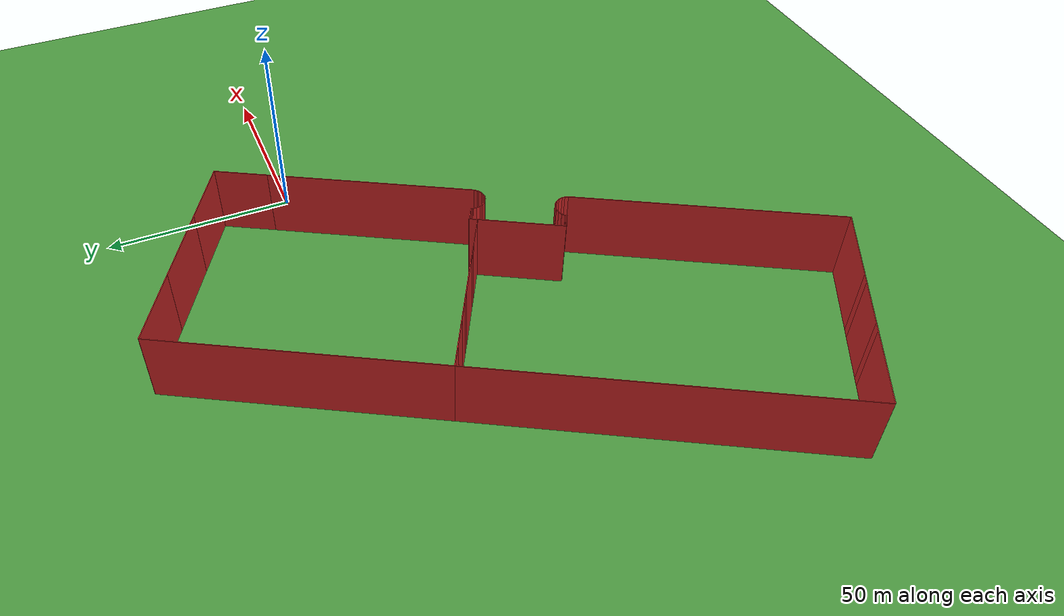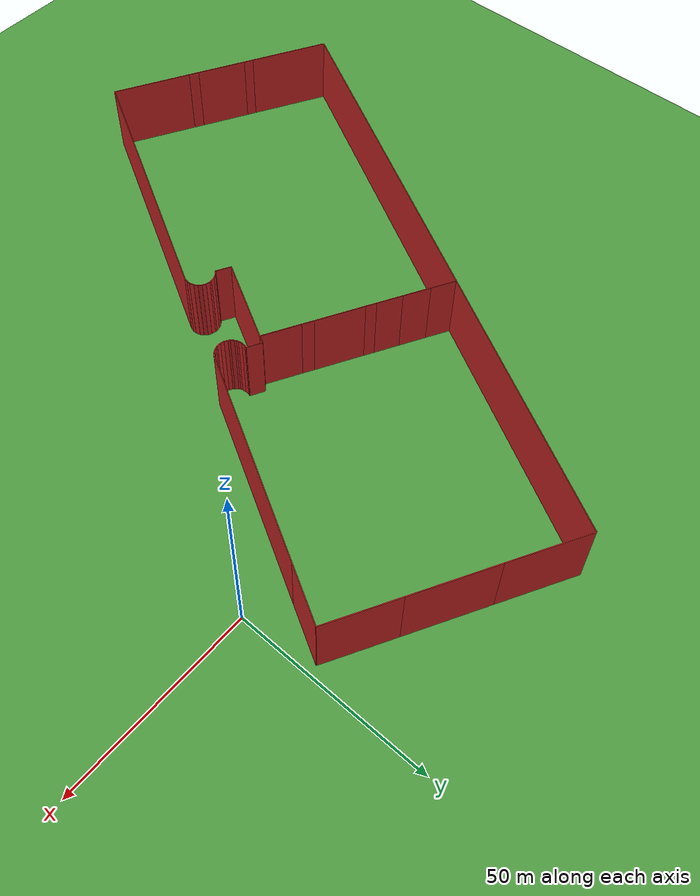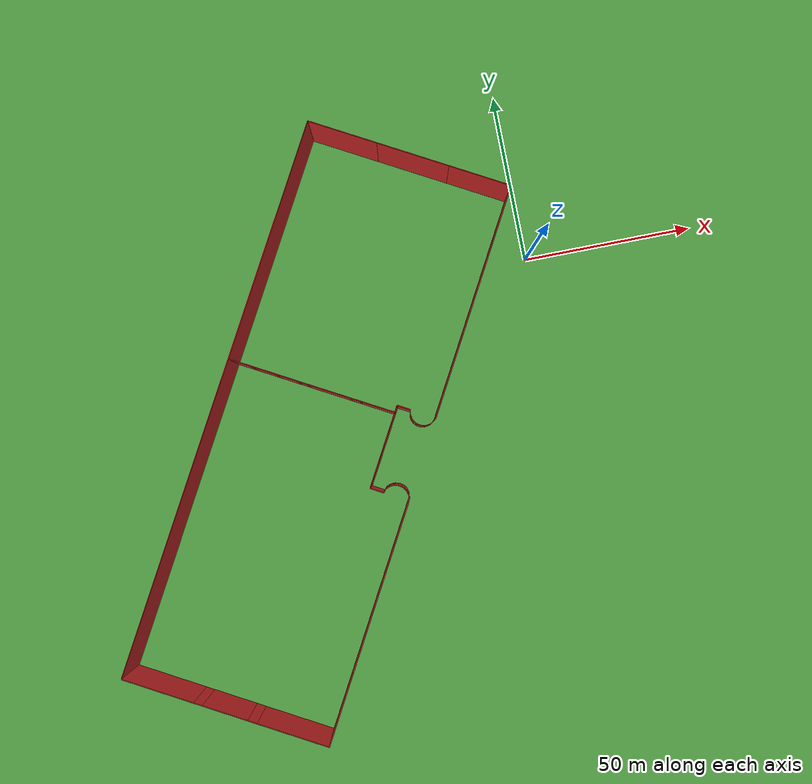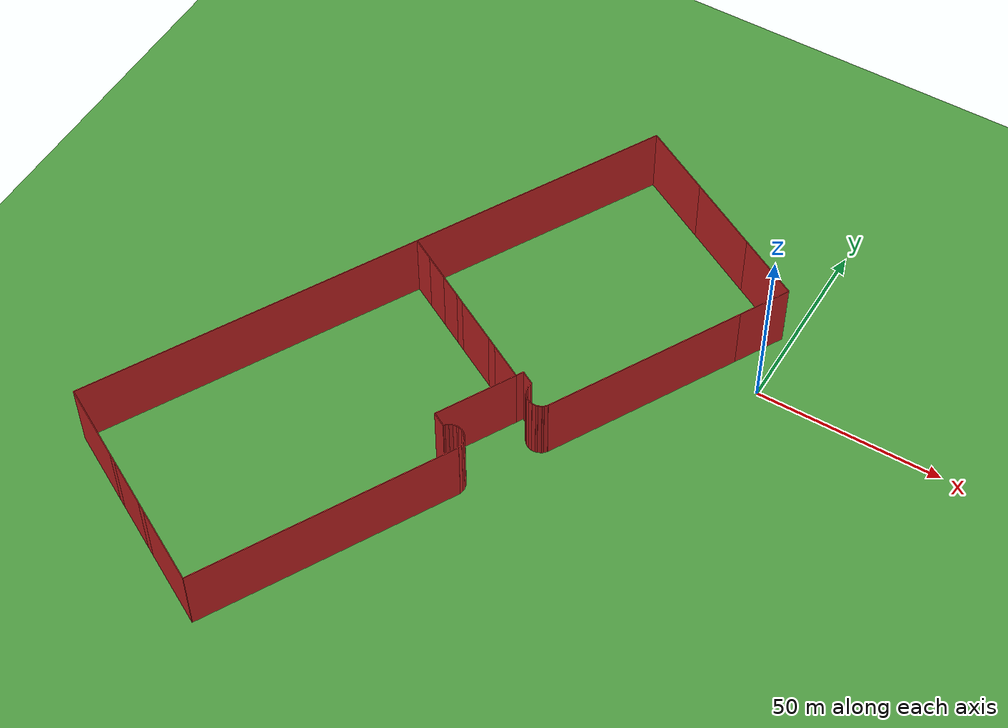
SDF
<sdf version="1.4">
 <world name="default">
  <model name="ground">
   <static>true</static>
   <link name="link">
    <collision name="collision">
     <geometry><plane><size>10000 10000</size><normal>0 0 1</normal></plane></geometry>
     <surface><friction><ode><mu>100</mu><mu2>50</mu2></ode></friction></surface>
    </collision>
    <visual name="visual">
     <pose>0 0 -1 0 0 0</pose>
     <geometry><plane><normal>0 0 1</normal><size>10000 10000</size></plane></geometry>
     <material>
      <script><uri>file://media/materials/scripts/gazebo.material</uri><name>Gazebo/Grass</name></script>
     </material>
    </visual>
   </link>
  </model>
  <include><uri>model://sun</uri></include>
  <model name="Simon and Schuster Building">
   <static>true</static>
   <pose>-47.6962353874 -24.9470054946 0.0 0 0 0</pose>
   <link name="Simon and Schuster Building_0">
    <collision name="Simon and Schuster Building_0">
     <geometry><box><size>71.4380936187 0.2 20.0</size></box></geometry>
    </collision>
    <visual name="Simon and Schuster Building_0">
     <geometry><box><size>71.4380936187 0.2 20.0</size></box></geometry>
     <material>
      <script><uri>file://media/materials/scripts/gazebo.material</uri><name>Gazebo/Red</name></script>
     </material>
    </visual>
    <pose>-25.5533376359 41.6574947093 9.0 0 0 -2.07699760132</pose>
   </link>
   <link name="Simon and Schuster Building_1">
    <collision name="Simon and Schuster Building_1">
     <geometry><box><size>20.6870997498 0.2 20.0</size></box></geometry>
    </collision>
    <visual name="Simon and Schuster Building_1">
     <geometry><box><size>20.6870997498 0.2 20.0</size></box></geometry>
     <material>
      <script><uri>file://media/materials/scripts/gazebo.material</uri><name>Gazebo/Red</name></script>
     </material>
    </visual>
    <pose>0.827700352413 67.9108597013 9.0 0 0 2.6385838798</pose>
   </link>
   <link name="Simon and Schuster Building_2">
    <collision name="Simon and Schuster Building_2">
     <geometry><box><size>21.5858556122 0.2 20.0</size></box></geometry>
    </collision>
    <visual name="Simon and Schuster Building_2">
     <geometry><box><size>21.5858556122 0.2 20.0</size></box></geometry>
     <material>
      <script><uri>file://media/materials/scripts/gazebo.material</uri><name>Gazebo/Red</name></script>
     </material>
    </visual>
    <pose>19.3471633394 57.7236041808 9.0 0 0 2.63878220523</pose>
   </link>
   <link name="Simon and Schuster Building_3">
    <collision name="Simon and Schuster Building_3">
     <geometry><box><size>18.5550408804 0.2 20.0</size></box></geometry>
    </collision>
    <visual name="Simon and Schuster Building_3">
     <geometry><box><size>18.5550408804 0.2 20.0</size></box></geometry>
     <material>
      <script><uri>file://media/materials/scripts/gazebo.material</uri><name>Gazebo/Red</name></script>
     </material>
    </visual>
    <pose>36.9326039464 48.0501783552 9.0 0 0 2.63857594239</pose>
   </link>
   <link name="Simon and Schuster Building_4">
    <collision name="Simon and Schuster Building_4">
     <geometry><box><size>14.4131865067 0.2 20.0</size></box></geometry>
    </collision>
    <visual name="Simon and Schuster Building_4">
     <geometry><box><size>14.4131865067 0.2 20.0</size></box></geometry>
     <material>
      <script><uri>file://media/materials/scripts/gazebo.material</uri><name>Gazebo/Red</name></script>
     </material>
    </visual>
    <pose>41.5694078952 37.2734571552 9.0 0 0 1.06501484287</pose>
   </link>
   <link name="Simon and Schuster Building_5">
    <collision name="Simon and Schuster Building_5">
     <geometry><box><size>54.9702549938 0.2 20.0</size></box></geometry>
    </collision>
    <visual name="Simon and Schuster Building_5">
     <geometry><box><size>54.9702549938 0.2 20.0</size></box></geometry>
     <material>
      <script><uri>file://media/materials/scripts/gazebo.material</uri><name>Gazebo/Red</name></script>
     </material>
    </visual>
    <pose>24.7512233169 6.93100967004 9.0 0 0 1.06458431968</pose>
   </link>
   <link name="Simon and Schuster Building_6">
    <collision name="Simon and Schuster Building_6">
     <geometry><box><size>0.999980190011 0.2 20.0</size></box></geometry>
    </collision>
    <visual name="Simon and Schuster Building_6">
     <geometry><box><size>0.999980190011 0.2 20.0</size></box></geometry>
     <material>
      <script><uri>file://media/materials/scripts/gazebo.material</uri><name>Gazebo/Red</name></script>
     </material>
    </visual>
    <pose>11.0798677542 -17.4693126733 9.0 0 0 0.810110981528</pose>
   </link>
   <link name="Simon and Schuster Building_7">
    <collision name="Simon and Schuster Building_7">
     <geometry><box><size>0.501273083533 0.2 20.0</size></box></geometry>
    </collision>
    <visual name="Simon and Schuster Building_7">
     <geometry><box><size>0.501273083533 0.2 20.0</size></box></geometry>
     <material>
      <script><uri>file://media/materials/scripts/gazebo.material</uri><name>Gazebo/Red</name></script>
     </material>
    </visual>
    <pose>10.529455777 -17.9746731024 9.0 0 0 0.608074829008</pose>
   </link>
   <link name="Simon and Schuster Building_8">
    <collision name="Simon and Schuster Building_8">
     <geometry><box><size>0.997408330679 0.2 20.0</size></box></geometry>
    </collision>
    <visual name="Simon and Schuster Building_8">
     <geometry><box><size>0.997408330679 0.2 20.0</size></box></geometry>
     <material>
      <script><uri>file://media/materials/scripts/gazebo.material</uri><name>Gazebo/Red</name></script>
     </material>
    </visual>
    <pose>9.8678479784 -18.3200044608 9.0 0 0 0.417352596468</pose>
   </link>
   <link name="Simon and Schuster Building_9">
    <collision name="Simon and Schuster Building_9">
     <geometry><box><size>0.512217014274 0.2 20.0</size></box></geometry>
    </collision>
    <visual name="Simon and Schuster Building_9">
     <geometry><box><size>0.512217014274 0.2 20.0</size></box></geometry>
     <material>
      <script><uri>file://media/materials/scripts/gazebo.material</uri><name>Gazebo/Red</name></script>
     </material>
    </visual>
    <pose>9.16176169993 -18.5768985831 9.0 0 0 0.215433376187</pose>
   </link>
   <link name="Simon and Schuster Building_10">
    <collision name="Simon and Schuster Building_10">
     <geometry><box><size>1.00107328043 0.2 20.0</size></box></geometry>
    </collision>
    <visual name="Simon and Schuster Building_10">
     <geometry><box><size>1.00107328043 0.2 20.0</size></box></geometry>
     <material>
      <script><uri>file://media/materials/scripts/gazebo.material</uri><name>Gazebo/Red</name></script>
     </material>
    </visual>
    <pose>8.41119634222 -18.6442839917 9.0 0 0 0.0252493590176</pose>
   </link>
   <link name="Simon and Schuster Building_11">
    <collision name="Simon and Schuster Building_11">
     <geometry><box><size>0.997755385082 0.2 20.0</size></box></geometry>
    </collision>
    <visual name="Simon and Schuster Building_11">
     <geometry><box><size>0.997755385082 0.2 20.0</size></box></geometry>
     <material>
      <script><uri>file://media/materials/scripts/gazebo.material</uri><name>Gazebo/Red</name></script>
     </material>
    </visual>
    <pose>7.42712059744 -18.5347956621 9.0 0 0 -0.247313322051</pose>
   </link>
   <link name="Simon and Schuster Building_12">
    <collision name="Simon and Schuster Building_12">
     <geometry><box><size>1.00107082446 0.2 20.0</size></box></geometry>
    </collision>
    <visual name="Simon and Schuster Building_12">
     <geometry><box><size>1.00107082446 0.2 20.0</size></box></geometry>
     <material>
      <script><uri>file://media/materials/scripts/gazebo.material</uri><name>Gazebo/Red</name></script>
     </material>
    </visual>
    <pose>6.50420058699 -18.1726281681 9.0 0 0 -0.500165781791</pose>
   </link>
   <link name="Simon and Schuster Building_13">
    <collision name="Simon and Schuster Building_13">
     <geometry><box><size>0.495348087162 0.2 20.0</size></box></geometry>
    </collision>
    <visual name="Simon and Schuster Building_13">
     <geometry><box><size>0.495348087162 0.2 20.0</size></box></geometry>
     <material>
      <script><uri>file://media/materials/scripts/gazebo.material</uri><name>Gazebo/Red</name></script>
     </material>
    </visual>
    <pose>5.87594692623 -17.772557076 9.0 0 0 -0.702498598296</pose>
   </link>
   <link name="Simon and Schuster Building_14">
    <collision name="Simon and Schuster Building_14">
     <geometry><box><size>1.00065503414 0.2 20.0</size></box></geometry>
    </collision>
    <visual name="Simon and Schuster Building_14">
     <geometry><box><size>1.00065503414 0.2 20.0</size></box></geometry>
     <material>
      <script><uri>file://media/materials/scripts/gazebo.material</uri><name>Gazebo/Red</name></script>
     </material>
    </visual>
    <pose>5.37556659732 -17.22087787 9.0 0 0 -0.89913356377</pose>
   </link>
   <link name="Simon and Schuster Building_15">
    <collision name="Simon and Schuster Building_15">
     <geometry><box><size>0.503784599763 0.2 20.0</size></box></geometry>
    </collision>
    <visual name="Simon and Schuster Building_15">
     <geometry><box><size>0.503784599763 0.2 20.0</size></box></geometry>
     <material>
      <script><uri>file://media/materials/scripts/gazebo.material</uri><name>Gazebo/Red</name></script>
     </material>
    </visual>
    <pose>4.94746264033 -16.6060285 9.0 0 0 -1.08883804761</pose>
   </link>
   <link name="Simon and Schuster Building_16">
    <collision name="Simon and Schuster Building_16">
     <geometry><box><size>0.500289534836 0.2 20.0</size></box></geometry>
    </collision>
    <visual name="Simon and Schuster Building_16">
     <geometry><box><size>0.500289534836 0.2 20.0</size></box></geometry>
     <material>
      <script><uri>file://media/materials/scripts/gazebo.material</uri><name>Gazebo/Red</name></script>
     </material>
    </visual>
    <pose>4.74730920657 -16.146996401 9.0 0 0 -1.23089192742</pose>
   </link>
   <link name="Simon and Schuster Building_17">
    <collision name="Simon and Schuster Building_17">
     <geometry><box><size>0.995993198311 0.2 20.0</size></box></geometry>
    </collision>
    <visual name="Simon and Schuster Building_17">
     <geometry><box><size>0.995993198311 0.2 20.0</size></box></geometry>
     <material>
      <script><uri>file://media/materials/scripts/gazebo.material</uri><name>Gazebo/Red</name></script>
     </material>
    </visual>
    <pose>4.59163230755 -15.418439928 9.0 0 0 -1.42514151866</pose>
   </link>
   <link name="Simon and Schuster Building_18">
    <collision name="Simon and Schuster Building_18">
     <geometry><box><size>0.991701103251 0.2 20.0</size></box></geometry>
    </collision>
    <visual name="Simon and Schuster Building_18">
     <geometry><box><size>0.991701103251 0.2 20.0</size></box></geometry>
     <material>
      <script><uri>file://media/materials/scripts/gazebo.material</uri><name>Gazebo/Red</name></script>
     </material>
    </visual>
    <pose>4.57494775226 -14.4329925316 9.0 0 0 -1.68315272438</pose>
   </link>
   <link name="Simon and Schuster Building_19">
    <collision name="Simon and Schuster Building_19">
     <geometry><box><size>0.504698190787 0.2 20.0</size></box></geometry>
    </collision>
    <visual name="Simon and Schuster Building_19">
     <geometry><box><size>0.504698190787 0.2 20.0</size></box></geometry>
     <material>
      <script><uri>file://media/materials/scripts/gazebo.material</uri><name>Gazebo/Red</name></script>
     </material>
    </visual>
    <pose>4.70837778395 -13.7002231823 9.0 0 0 -1.88435162467</pose>
   </link>
   <link name="Simon and Schuster Building_20">
    <collision name="Simon and Schuster Building_20">
     <geometry><box><size>3.96123953345 0.2 20.0</size></box></geometry>
    </collision>
    <visual name="Simon and Schuster Building_20">
     <geometry><box><size>3.96123953345 0.2 20.0</size></box></geometry>
     <material>
      <script><uri>file://media/materials/scripts/gazebo.material</uri><name>Gazebo/Red</name></script>
     </material>
    </visual>
    <pose>3.05156727858 -12.5042181712 9.0 0 0 -0.503685783553</pose>
   </link>
   <link name="Simon and Schuster Building_21">
    <collision name="Simon and Schuster Building_21">
     <geometry><box><size>2.0488746776 0.2 20.0</size></box></geometry>
    </collision>
    <visual name="Simon and Schuster Building_21">
     <geometry><box><size>2.0488746776 0.2 20.0</size></box></geometry>
     <material>
      <script><uri>file://media/materials/scripts/gazebo.material</uri><name>Gazebo/Red</name></script>
     </material>
    </visual>
    <pose>0.822108693752 -12.4452713242 9.0 0 0 1.06670793752</pose>
   </link>
   <link name="Simon and Schuster Building_22">
    <collision name="Simon and Schuster Building_22">
     <geometry><box><size>10.1819965175 0.2 20.0</size></box></geometry>
    </collision>
    <visual name="Simon and Schuster Building_22">
     <geometry><box><size>10.1819965175 0.2 20.0</size></box></geometry>
     <material>
      <script><uri>file://media/materials/scripts/gazebo.material</uri><name>Gazebo/Red</name></script>
     </material>
    </visual>
    <pose>-4.13719236136 -10.8955294638 9.0 0 0 -0.501343475595</pose>
   </link>
   <link name="Simon and Schuster Building_23">
    <collision name="Simon and Schuster Building_23">
     <geometry><box><size>3.10390647777 0.2 20.0</size></box></geometry>
    </collision>
    <visual name="Simon and Schuster Building_23">
     <geometry><box><size>3.10390647777 0.2 20.0</size></box></geometry>
     <material>
      <script><uri>file://media/materials/scripts/gazebo.material</uri><name>Gazebo/Red</name></script>
     </material>
    </visual>
    <pose>-9.95826196489 -7.69495403095 9.0 0 0 -0.507191082803</pose>
   </link>
   <link name="Simon and Schuster Building_24">
    <collision name="Simon and Schuster Building_24">
     <geometry><box><size>12.8547741945 0.2 20.0</size></box></geometry>
    </collision>
    <visual name="Simon and Schuster Building_24">
     <geometry><box><size>12.8547741945 0.2 20.0</size></box></geometry>
     <material>
      <script><uri>file://media/materials/scripts/gazebo.material</uri><name>Gazebo/Red</name></script>
     </material>
    </visual>
    <pose>-16.9524382079 -3.85425306886 9.0 0 0 -0.500962342889</pose>
   </link>
   <link name="Simon and Schuster Building_25">
    <collision name="Simon and Schuster Building_25">
     <geometry><box><size>2.75404942721 0.2 20.0</size></box></geometry>
    </collision>
    <visual name="Simon and Schuster Building_25">
     <geometry><box><size>2.75404942721 0.2 20.0</size></box></geometry>
     <material>
      <script><uri>file://media/materials/scripts/gazebo.material</uri><name>Gazebo/Red</name></script>
     </material>
    </visual>
    <pose>-23.7909405075 -0.0935640487482 9.0 0 0 -0.511312389174</pose>
   </link>
   <link name="Simon and Schuster Building_26">
    <collision name="Simon and Schuster Building_26">
     <geometry><box><size>6.64780825718 0.2 20.0</size></box></geometry>
    </collision>
    <visual name="Simon and Schuster Building_26">
     <geometry><box><size>6.64780825718 0.2 20.0</size></box></geometry>
     <material>
      <script><uri>file://media/materials/scripts/gazebo.material</uri><name>Gazebo/Red</name></script>
     </material>
    </visual>
    <pose>-27.905160005 2.18054213489 9.0 0 0 -0.502309612859</pose>
   </link>
   <link name="Simon and Schuster Building_27">
    <collision name="Simon and Schuster Building_27">
     <geometry><box><size>7.15930381738 0.2 20.0</size></box></geometry>
    </collision>
    <visual name="Simon and Schuster Building_27">
     <geometry><box><size>7.15930381738 0.2 20.0</size></box></geometry>
     <material>
      <script><uri>file://media/materials/scripts/gazebo.material</uri><name>Gazebo/Red</name></script>
     </material>
    </visual>
    <pose>-33.9541734842 5.50747907603 9.0 0 0 -0.503333674969</pose>
   </link>
   <link name="Simon and Schuster Building_28">
    <collision name="Simon and Schuster Building_28">
     <geometry><box><size>6.60072019499 0.2 20.0</size></box></geometry>
    </collision>
    <visual name="Simon and Schuster Building_28">
     <geometry><box><size>6.60072019499 0.2 20.0</size></box></geometry>
     <material>
      <script><uri>file://media/materials/scripts/gazebo.material</uri><name>Gazebo/Red</name></script>
     </material>
    </visual>
    <pose>-39.9809465211 8.82599862009 9.0 0 0 -0.503318613671</pose>
   </link>
  </model>
  <model name="office_building_266170794">
   <static>true</static>
   <pose>-68.3519740616 -61.2051730251 0.0 0 0 0</pose>
   <link name="office_building_266170794_0">
    <collision name="office_building_266170794_0">
     <geometry><box><size>0.985597973243 0.2 20.0</size></box></geometry>
    </collision>
    <visual name="office_building_266170794_0">
     <geometry><box><size>0.985597973243 0.2 20.0</size></box></geometry>
     <material>
      <script><uri>file://media/materials/scripts/gazebo.material</uri><name>Gazebo/Red</name></script>
     </material>
    </visual>
    <pose>20.2937956316 -1.83824096528 9.0 0 0 1.34320542155</pose>
   </link>
   <link name="office_building_266170794_1">
    <collision name="office_building_266170794_1">
     <geometry><box><size>71.4105456865 0.2 20.0</size></box></geometry>
    </collision>
    <visual name="office_building_266170794_1">
     <geometry><box><size>71.4105456865 0.2 20.0</size></box></geometry>
     <material>
      <script><uri>file://media/materials/scripts/gazebo.material</uri><name>Gazebo/Red</name></script>
     </material>
    </visual>
    <pose>2.86995501075 -33.5455423876 9.0 0 0 1.06457430884</pose>
   </link>
   <link name="office_building_266170794_2">
    <collision name="office_building_266170794_2">
     <geometry><box><size>21.111753551 0.2 20.0</size></box></geometry>
    </collision>
    <visual name="office_building_266170794_2">
     <geometry><box><size>21.111753551 0.2 20.0</size></box></geometry>
     <material>
      <script><uri>file://media/materials/scripts/gazebo.material</uri><name>Gazebo/Red</name></script>
     </material>
    </visual>
    <pose>-23.6941958117 -59.6898142996 9.0 0 0 -0.502396039008</pose>
   </link>
   <link name="office_building_266170794_3">
    <collision name="office_building_266170794_3">
     <geometry><box><size>2.76938536291 0.2 20.0</size></box></geometry>
    </collision>
    <visual name="office_building_266170794_3">
     <geometry><box><size>2.76938536291 0.2 20.0</size></box></geometry>
     <material>
      <script><uri>file://media/materials/scripts/gazebo.material</uri><name>Gazebo/Red</name></script>
     </material>
    </visual>
    <pose>-34.1577319762 -53.937290424 9.0 0 0 -0.504720133773</pose>
   </link>
   <link name="office_building_266170794_4">
    <collision name="office_building_266170794_4">
     <geometry><box><size>13.2623406227 0.2 20.0</size></box></geometry>
    </collision>
    <visual name="office_building_266170794_4">
     <geometry><box><size>13.2623406227 0.2 20.0</size></box></geometry>
     <material>
      <script><uri>file://media/materials/scripts/gazebo.material</uri><name>Gazebo/Red</name></script>
     </material>
    </visual>
    <pose>-41.1797501444 -50.0713763378 9.0 0 0 -0.502953937623</pose>
   </link>
   <link name="office_building_266170794_5">
    <collision name="office_building_266170794_5">
     <geometry><box><size>2.50958147967 0.2 20.0</size></box></geometry>
    </collision>
    <visual name="office_building_266170794_5">
     <geometry><box><size>2.50958147967 0.2 20.0</size></box></geometry>
     <material>
      <script><uri>file://media/materials/scripts/gazebo.material</uri><name>Gazebo/Red</name></script>
     </material>
    </visual>
    <pose>-48.0905717109 -46.2728398111 9.0 0 0 -0.50057143386</pose>
   </link>
   <link name="office_building_266170794_6">
    <collision name="office_building_266170794_6">
     <geometry><box><size>21.1751058466 0.2 20.0</size></box></geometry>
    </collision>
    <visual name="office_building_266170794_6">
     <geometry><box><size>21.1751058466 0.2 20.0</size></box></geometry>
     <material>
      <script><uri>file://media/materials/scripts/gazebo.material</uri><name>Gazebo/Red</name></script>
     </material>
    </visual>
    <pose>-58.4651374539 -40.5623777782 9.0 0 0 -0.503480802042</pose>
   </link>
   <link name="office_building_266170794_7">
    <collision name="office_building_266170794_7">
     <geometry><box><size>93.9024523558 0.2 20.0</size></box></geometry>
    </collision>
    <visual name="office_building_266170794_7">
     <geometry><box><size>93.9024523558 0.2 20.0</size></box></geometry>
     <material>
      <script><uri>file://media/materials/scripts/gazebo.material</uri><name>Gazebo/Red</name></script>
     </material>
    </visual>
    <pose>-44.9775720392 5.61096126976 9.0 0 0 -2.07691469404</pose>
   </link>
   <link name="office_building_266170794_8">
    <collision name="office_building_266170794_8">
     <geometry><box><size>6.60072019499 0.2 20.0</size></box></geometry>
    </collision>
    <visual name="office_building_266170794_8">
     <geometry><box><size>6.60072019499 0.2 20.0</size></box></geometry>
     <material>
      <script><uri>file://media/materials/scripts/gazebo.material</uri><name>Gazebo/Red</name></script>
     </material>
    </visual>
    <pose>-19.3252078469 45.0841661506 9.0 0 0 2.63827403992</pose>
   </link>
   <link name="office_building_266170794_9">
    <collision name="office_building_266170794_9">
     <geometry><box><size>7.15930381738 0.2 20.0</size></box></geometry>
    </collision>
    <visual name="office_building_266170794_9">
     <geometry><box><size>7.15930381738 0.2 20.0</size></box></geometry>
     <material>
      <script><uri>file://media/materials/scripts/gazebo.material</uri><name>Gazebo/Red</name></script>
     </material>
    </visual>
    <pose>-13.29843481 41.7656466065 9.0 0 0 2.63825897862</pose>
   </link>
   <link name="office_building_266170794_10">
    <collision name="office_building_266170794_10">
     <geometry><box><size>6.64780825718 0.2 20.0</size></box></geometry>
    </collision>
    <visual name="office_building_266170794_10">
     <geometry><box><size>6.64780825718 0.2 20.0</size></box></geometry>
     <material>
      <script><uri>file://media/materials/scripts/gazebo.material</uri><name>Gazebo/Red</name></script>
     </material>
    </visual>
    <pose>-7.24942133079 38.4387096654 9.0 0 0 2.63928304073</pose>
   </link>
   <link name="office_building_266170794_11">
    <collision name="office_building_266170794_11">
     <geometry><box><size>2.75404942721 0.2 20.0</size></box></geometry>
    </collision>
    <visual name="office_building_266170794_11">
     <geometry><box><size>2.75404942721 0.2 20.0</size></box></geometry>
     <material>
      <script><uri>file://media/materials/scripts/gazebo.material</uri><name>Gazebo/Red</name></script>
     </material>
    </visual>
    <pose>-3.13520183328 36.1646034818 9.0 0 0 2.63028026442</pose>
   </link>
   <link name="office_building_266170794_12">
    <collision name="office_building_266170794_12">
     <geometry><box><size>12.8547741945 0.2 20.0</size></box></geometry>
    </collision>
    <visual name="office_building_266170794_12">
     <geometry><box><size>12.8547741945 0.2 20.0</size></box></geometry>
     <material>
      <script><uri>file://media/materials/scripts/gazebo.material</uri><name>Gazebo/Red</name></script>
     </material>
    </visual>
    <pose>3.70330046628 32.4039144617 9.0 0 0 2.6406303107</pose>
   </link>
   <link name="office_building_266170794_13">
    <collision name="office_building_266170794_13">
     <geometry><box><size>3.10390647777 0.2 20.0</size></box></geometry>
    </collision>
    <visual name="office_building_266170794_13">
     <geometry><box><size>3.10390647777 0.2 20.0</size></box></geometry>
     <material>
      <script><uri>file://media/materials/scripts/gazebo.material</uri><name>Gazebo/Red</name></script>
     </material>
    </visual>
    <pose>10.6974767093 28.5632134996 9.0 0 0 2.63440157079</pose>
   </link>
   <link name="office_building_266170794_14">
    <collision name="office_building_266170794_14">
     <geometry><box><size>10.1819965175 0.2 20.0</size></box></geometry>
    </collision>
    <visual name="office_building_266170794_14">
     <geometry><box><size>10.1819965175 0.2 20.0</size></box></geometry>
     <material>
      <script><uri>file://media/materials/scripts/gazebo.material</uri><name>Gazebo/Red</name></script>
     </material>
    </visual>
    <pose>16.5185463128 25.3626380668 9.0 0 0 2.640249178</pose>
   </link>
   <link name="office_building_266170794_15">
    <collision name="office_building_266170794_15">
     <geometry><box><size>22.4290645627 0.2 20.0</size></box></geometry>
    </collision>
    <visual name="office_building_266170794_15">
     <geometry><box><size>22.4290645627 0.2 20.0</size></box></geometry>
     <material>
      <script><uri>file://media/materials/scripts/gazebo.material</uri><name>Gazebo/Red</name></script>
     </material>
    </visual>
    <pose>15.5456663916 13.1076846066 9.0 0 0 1.06460445925</pose>
   </link>
   <link name="office_building_266170794_16">
    <collision name="office_building_266170794_16">
     <geometry><box><size>4.08708380535 0.2 20.0</size></box></geometry>
    </collision>
    <visual name="office_building_266170794_16">
     <geometry><box><size>4.08708380535 0.2 20.0</size></box></geometry>
     <material>
      <script><uri>file://media/materials/scripts/gazebo.material</uri><name>Gazebo/Red</name></script>
     </material>
    </visual>
    <pose>11.8985444712 2.31405085622 9.0 0 0 2.63840658875</pose>
   </link>
   <link name="office_building_266170794_17">
    <collision name="office_building_266170794_17">
     <geometry><box><size>0.411089030786 0.2 20.0</size></box></geometry>
    </collision>
    <visual name="office_building_266170794_17">
     <geometry><box><size>0.411089030786 0.2 20.0</size></box></geometry>
     <material>
      <script><uri>file://media/materials/scripts/gazebo.material</uri><name>Gazebo/Red</name></script>
     </material>
    </visual>
    <pose>13.7777450862 1.51391467159 9.0 0 0 -2.01836458682</pose>
   </link>
   <link name="office_building_266170794_18">
    <collision name="office_building_266170794_18">
     <geometry><box><size>0.991914916586 0.2 20.0</size></box></geometry>
    </collision>
    <visual name="office_building_266170794_18">
     <geometry><box><size>0.991914916586 0.2 20.0</size></box></geometry>
     <material>
      <script><uri>file://media/materials/scripts/gazebo.material</uri><name>Gazebo/Red</name></script>
     </material>
    </visual>
    <pose>14.2558793125 2.00664299768 9.0 0 0 -2.47301472578</pose>
   </link>
   <link name="office_building_266170794_19">
    <collision name="office_building_266170794_19">
     <geometry><box><size>0.990700347666 0.2 20.0</size></box></geometry>
    </collision>
    <visual name="office_building_266170794_19">
     <geometry><box><size>0.990700347666 0.2 20.0</size></box></geometry>
     <material>
      <script><uri>file://media/materials/scripts/gazebo.material</uri><name>Gazebo/Red</name></script>
     </material>
    </visual>
    <pose>15.1009567546 2.50779683321 9.0 0 0 -2.73978177848</pose>
   </link>
   <link name="office_building_266170794_20">
    <collision name="office_building_266170794_20">
     <geometry><box><size>0.999939515745 0.2 20.0</size></box></geometry>
    </collision>
    <visual name="office_building_266170794_20">
     <geometry><box><size>0.999939515745 0.2 20.0</size></box></geometry>
     <material>
      <script><uri>file://media/materials/scripts/gazebo.material</uri><name>Gazebo/Red</name></script>
     </material>
    </visual>
    <pose>16.0516712731 2.77311750777 9.0 0 0 -2.99789731028</pose>
   </link>
   <link name="office_building_266170794_21">
    <collision name="office_building_266170794_21">
     <geometry><box><size>0.489909728263 0.2 20.0</size></box></geometry>
    </collision>
    <visual name="office_building_266170794_21">
     <geometry><box><size>0.489909728263 0.2 20.0</size></box></geometry>
     <material>
      <script><uri>file://media/materials/scripts/gazebo.material</uri><name>Gazebo/Red</name></script>
     </material>
    </visual>
    <pose>16.7911170692 2.83208182218 9.0 0 0 3.09000098081</pose>
   </link>
   <link name="office_building_266170794_22">
    <collision name="office_building_266170794_22">
     <geometry><box><size>0.997755469147 0.2 20.0</size></box></geometry>
    </collision>
    <visual name="office_building_266170794_22">
     <geometry><box><size>0.997755469147 0.2 20.0</size></box></geometry>
     <material>
      <script><uri>file://media/materials/scripts/gazebo.material</uri><name>Gazebo/Red</name></script>
     </material>
    </visual>
    <pose>17.5194449047 2.6973253898 9.0 0 0 2.89428102627</pose>
   </link>
   <link name="office_building_266170794_23">
    <collision name="office_building_266170794_23">
     <geometry><box><size>0.987276587212 0.2 20.0</size></box></geometry>
    </collision>
    <visual name="office_building_266170794_23">
     <geometry><box><size>0.987276587212 0.2 20.0</size></box></geometry>
     <material>
      <script><uri>file://media/materials/scripts/gazebo.material</uri><name>Gazebo/Red</name></script>
     </material>
    </visual>
    <pose>18.4368058942 2.33937063126 9.0 0 0 2.64351324668</pose>
   </link>
   <link name="office_building_266170794_24">
    <collision name="office_building_266170794_24">
     <geometry><box><size>0.985842112598 0.2 20.0</size></box></geometry>
    </collision>
    <visual name="office_building_266170794_24">
     <geometry><box><size>0.985842112598 0.2 20.0</size></box></geometry>
     <material>
      <script><uri>file://media/materials/scripts/gazebo.material</uri><name>Gazebo/Red</name></script>
     </material>
    </visual>
    <pose>19.2262944951 1.76242642268 9.0 0 0 2.37730170104</pose>
   </link>
   <link name="office_building_266170794_25">
    <collision name="office_building_266170794_25">
     <geometry><box><size>0.992620580768 0.2 20.0</size></box></geometry>
    </collision>
    <visual name="office_building_266170794_25">
     <geometry><box><size>0.992620580768 0.2 20.0</size></box></geometry>
     <material>
      <script><uri>file://media/materials/scripts/gazebo.material</uri><name>Gazebo/Red</name></script>
     </material>
    </visual>
    <pose>19.8378727996 0.995971616316 9.0 0 0 2.11216128862</pose>
   </link>
   <link name="office_building_266170794_26">
    <collision name="office_building_266170794_26">
     <geometry><box><size>1.18416896978 0.2 20.0</size></box></geometry>
    </collision>
    <visual name="office_building_266170794_26">
     <geometry><box><size>1.18416896978 0.2 20.0</size></box></geometry>
     <material>
      <script><uri>file://media/materials/scripts/gazebo.material</uri><name>Gazebo/Red</name></script>
     </material>
    </visual>
    <pose>20.2437424887 -0.00210719243478 9.0 0 0 1.82713579869</pose>
   </link>
   <link name="office_building_266170794_27">
    <collision name="office_building_266170794_27">
     <geometry><box><size>0.783383852368 0.2 20.0</size></box></geometry>
    </collision>
    <visual name="office_building_266170794_27">
     <geometry><box><size>0.783383852368 0.2 20.0</size></box></geometry>
     <material>
      <script><uri>file://media/materials/scripts/gazebo.material</uri><name>Gazebo/Red</name></script>
     </material>
    </visual>
    <pose>20.3994234227 -0.966497470966 9.0 0 0 1.58499939578</pose>
   </link>
  </model>
 </world>
</sdf>
